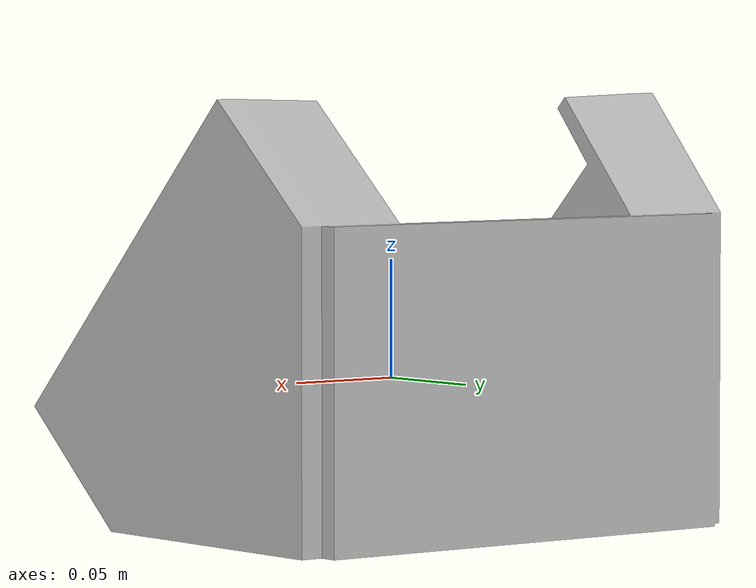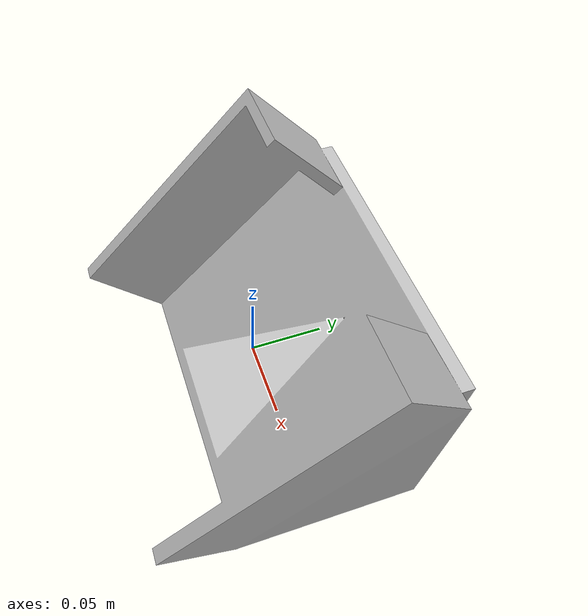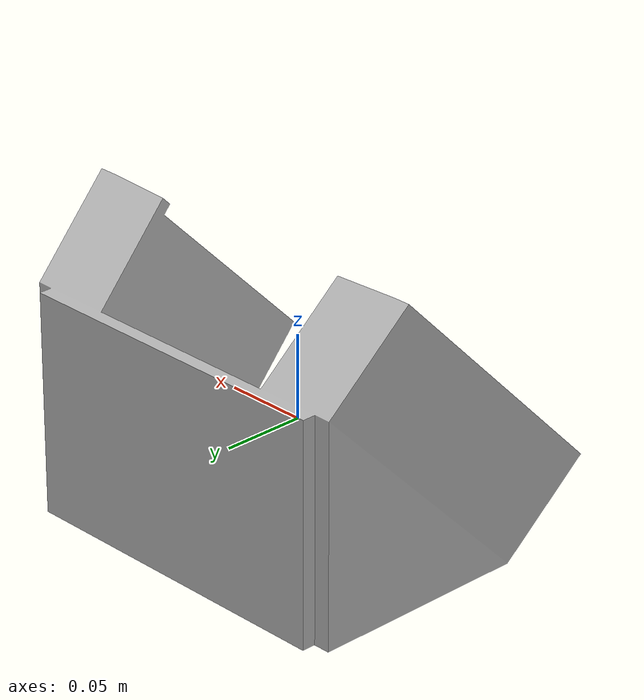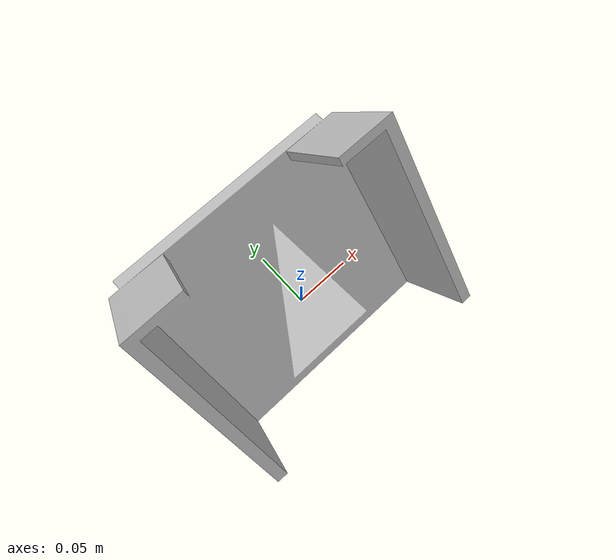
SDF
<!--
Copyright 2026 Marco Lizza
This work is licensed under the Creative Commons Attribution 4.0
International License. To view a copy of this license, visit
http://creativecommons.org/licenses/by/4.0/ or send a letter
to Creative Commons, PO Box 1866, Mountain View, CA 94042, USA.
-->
<?xml version="1.0" ?>
<sdf version="1.6">
  <model name="Goal case">
    <link name="link_0">
        <inertial>
        <mass>5000</mass>
      </inertial>
      <visual name="visual">
        <geometry>
          <mesh>
            <uri>meshes/goal_case.obj</uri>
          </mesh>
        </geometry>
      </visual>
      <collision name="collision_0">
        <geometry>
          <mesh>
            <uri>meshes/goal_case.obj</uri>
          </mesh>
        </geometry>
      </collision>
    </link>
  </model>
</sdf>
